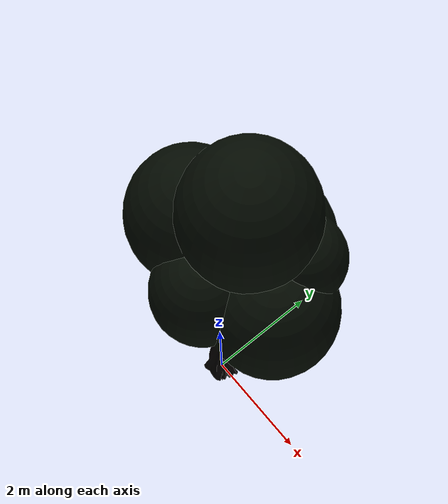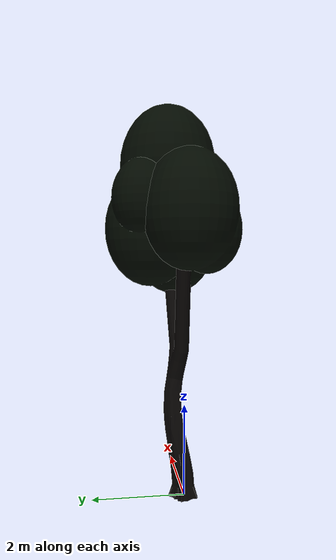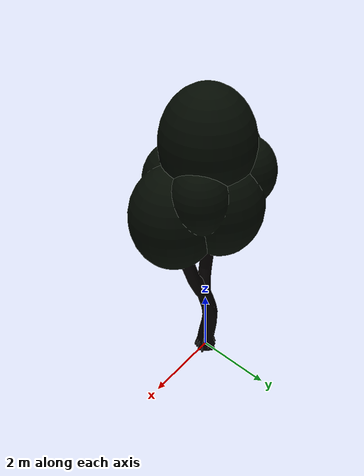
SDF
<?xml version="1.0" ?>
<sdf version="1.9">
  <model name="tree1">
    <static>true</static>
    <link name="tree_link">
      <visual name="tree_visual">
        <geometry>
          <mesh>
            <uri>model://tree1/meshes/tree_a.dae</uri>
            <scale>0.4 0.4 0.5</scale>
          </mesh>
        </geometry>
      </visual>
      <collision name="tree_collision">
        <geometry>
          <mesh>
            <uri>model://tree1/meshes/tree_a.dae</uri>
            <scale>0.4 0.4 0.5</scale>
          </mesh>
        </geometry>
      </collision>
    </link>
  </model>
</sdf>
